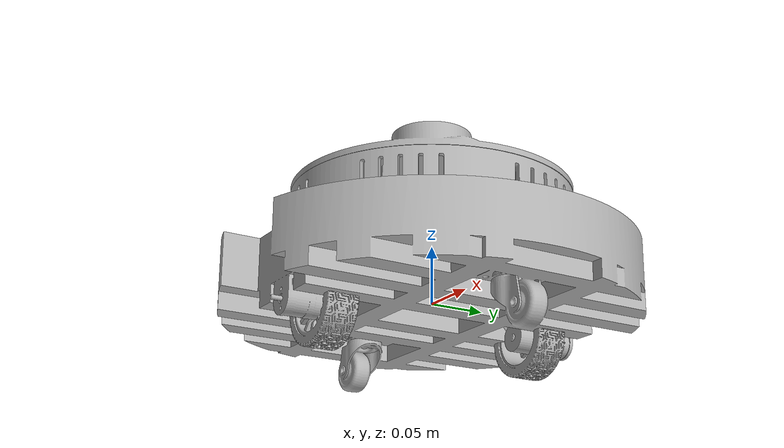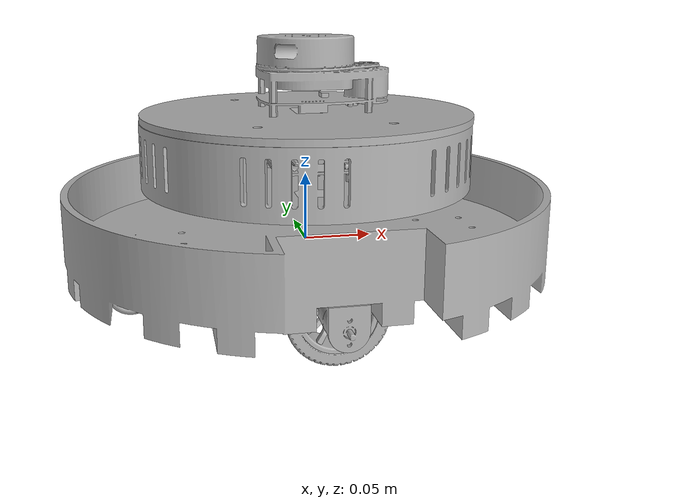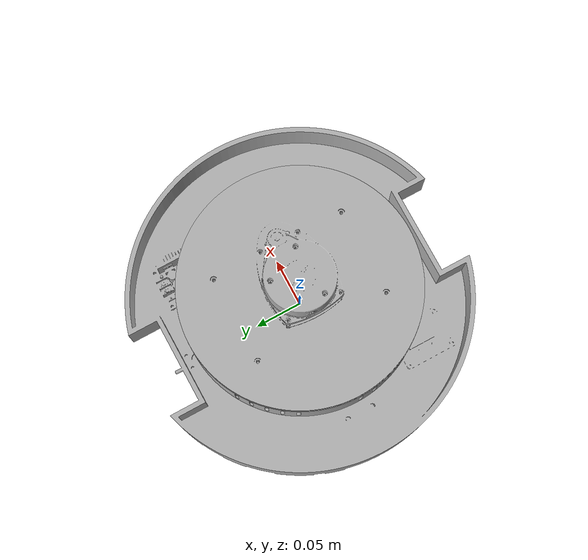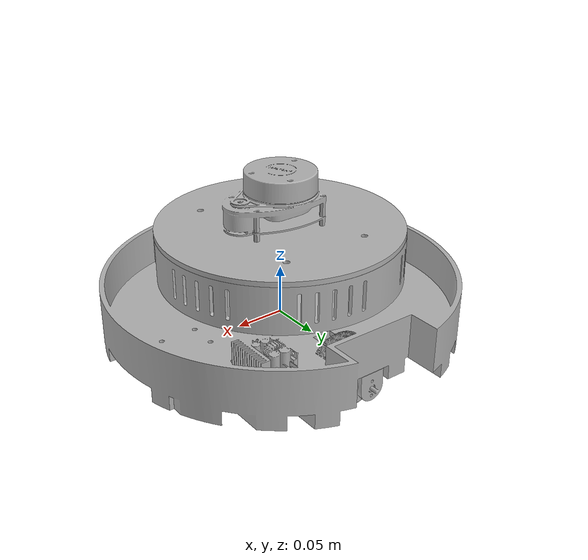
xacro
<?xml version="1.0" ?>
<robot name="robot_assembly" xmlns:xacro="http://www.ros.org/wiki/xacro">

<xacro:include filename="$(find my_bot)/description/urdf/materials.xacro" />
<xacro:include filename="$(find my_bot)/description/urdf/robot_assembly.trans" />
<xacro:include filename="$(find my_bot)/description/urdf/robot_assembly.gazebo" />

<!-- base_footprint: gốc tọa độ chuẩn ROS (trục X = hướng tiến) -->
<link name="base_footprint"/>

<joint name="base_joint" type="fixed">
  <parent link="base_footprint"/>
  <child link="base_link"/>
  <origin xyz="0.0 0.0 0.0" rpy="0 0 1.5708"/>
</joint>

<link name="base_link">
  <inertial>
    <origin xyz="-0.0001801031310621884 0.00025924195261079174 0.003832242271524391" rpy="0 0 0"/>
    <mass value="5.341870907493194"/>
    <inertia ixx="0.025638" iyy="0.018383" izz="0.041044" ixy="-6.3e-05" iyz="-1.6e-05" ixz="3e-06"/>
  </inertial>
  <visual>
    <origin xyz="0 0 0" rpy="0 0 0"/>
    <geometry>
      <mesh filename="package://my_bot/description/meshes/base_link.stl" scale="0.001 0.001 0.001"/>
    </geometry>
    <material name="silver"/>
  </visual>
  <collision>
    <origin xyz="0 0 0" rpy="0 0 0"/>
    <geometry>
      <mesh filename="package://my_bot/description/meshes/base_link.stl" scale="0.001 0.001 0.001"/>
    </geometry>
  </collision>
</link>

<link name="left_wheel_1_1">
  <inertial>
    <origin xyz="-0.009252274703491131 -4.414402370967493e-06 -5.315775120334765e-06" rpy="0 0 0"/>
    <mass value="0.2717966197109235"/>
    <inertia ixx="0.0002" iyy="0.000119" izz="0.000119" ixy="-0.0" iyz="-0.0" ixz="-0.0"/>
  </inertial>
  <visual>
    <origin xyz="0.090987 -0.000611 0.016569" rpy="0 0 0"/>
    <geometry>
      <mesh filename="package://my_bot/description/meshes/left_wheel_1_1.stl" scale="0.001 0.001 0.001"/>
    </geometry>
    <material name="silver"/>
  </visual>
  <collision>
    <origin xyz="0.090987 -0.000611 0.016569" rpy="0 0 0"/>
    <geometry>
      <mesh filename="package://my_bot/description/meshes/left_wheel_1_1.stl" scale="0.001 0.001 0.001"/>
    </geometry>
  </collision>
</link>

<link name="right_wheel_1">
  <inertial>
    <origin xyz="0.009252355095506246 -6.634310137020602e-06 -2.4158363846199515e-07" rpy="0 0 0"/>
    <mass value="0.2717966197108583"/>
    <inertia ixx="0.0002" iyy="0.000119" izz="0.000119" ixy="0.0" iyz="-0.0" ixz="0.0"/>
  </inertial>
  <visual>
    <origin xyz="-0.090987 -0.000611 0.016569" rpy="0 0 0"/>
    <geometry>
      <mesh filename="package://my_bot/description/meshes/right_wheel_1.stl" scale="0.001 0.001 0.001"/>
    </geometry>
    <material name="silver"/>
  </visual>
  <collision>
    <origin xyz="-0.090987 -0.000611 0.016569" rpy="0 0 0"/>
    <geometry>
      <mesh filename="package://my_bot/description/meshes/right_wheel_1.stl" scale="0.001 0.001 0.001"/>
    </geometry>
  </collision>
</link>

<link name="Tang2_24cm_ComponentPi_1_1">
  <inertial>
    <origin xyz="0.0011619472588145366 0.00037962234624636104 0.04981801224075864" rpy="0 0 0"/>
    <mass value="3.7734661537037937"/>
    <inertia ixx="0.016801" iyy="0.01713" izz="0.032625" ixy="3e-06" iyz="1.4e-05" ixz="4e-06"/>
  </inertial>
  <visual>
    <origin xyz="0.0 -0.0 -0.007" rpy="0 0 0"/>
    <geometry>
      <mesh filename="package://my_bot/description/meshes/Tang2_24cm_ComponentPi_1_1.stl" scale="0.001 0.001 0.001"/>
    </geometry>
    <material name="silver"/>
  </visual>
  <collision>
    <origin xyz="0.0 -0.0 -0.007" rpy="0 0 0"/>
    <geometry>
      <mesh filename="package://my_bot/description/meshes/Tang2_24cm_ComponentPi_1_1.stl" scale="0.001 0.001 0.001"/>
    </geometry>
  </collision>
</link>

<link name="Tang3_24cm_ComponentLidar_1_1">
  <inertial>
    <origin xyz="-0.0002176504381086913 -0.0033925161264463212 0.09435239830255189" rpy="0 0 0"/>
    <mass value="2.3189387029545405"/>
    <inertia ixx="0.007248" iyy="0.006946" izz="0.013375" ixy="3e-06" iyz="8.5e-05" ixz="8e-06"/>
  </inertial>
  <visual>
    <origin xyz="0.0 -0.0 -0.007" rpy="0 0 0"/>
    <geometry>
      <mesh filename="package://my_bot/description/meshes/Tang3_24cm_ComponentLidar_1_1.stl" scale="0.001 0.001 0.001"/>
    </geometry>
    <material name="silver"/>
  </visual>
  <collision>
    <origin xyz="0.0 -0.0 -0.007" rpy="0 0 0"/>
    <geometry>
      <mesh filename="package://my_bot/description/meshes/Tang3_24cm_ComponentLidar_1_1.stl" scale="0.001 0.001 0.001"/>
    </geometry>
  </collision>
</link>

<joint name="revolute_9" type="continuous">
  <origin xyz="-0.090987 0.000611 -0.016569" rpy="0 0 0"/>
  <parent link="base_link"/>
  <child link="left_wheel_1_1"/>
  <axis xyz="1.0 0.0 0.0"/>
</joint>

<joint name="revolute_10" type="continuous">
  <origin xyz="0.090987 0.000611 -0.016569" rpy="0 0 0"/>
  <parent link="base_link"/>
  <child link="right_wheel_1"/>
  <axis xyz="1.0 0.0 0.0"/>
</joint>

<joint name="Rigid 11" type="fixed">
  <origin xyz="0.0 0.0 0.007" rpy="0 0 0"/>
  <parent link="base_link"/>
  <child link="Tang2_24cm_ComponentPi_1_1"/>
</joint>

<joint name="Rigid 12" type="fixed">
  <origin xyz="0.0 0.0 0.007" rpy="0 0 0"/>
  <parent link="base_link"/>
  <child link="Tang3_24cm_ComponentLidar_1_1"/>
</joint>

</robot>

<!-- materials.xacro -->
<robot name="robot_assembly" xmlns:xacro="http://www.ros.org/wiki/xacro" >

<material name="silver">
  <color rgba="0.700 0.700 0.700 1.000"/>
</material>

</robot>

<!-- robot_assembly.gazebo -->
<robot name="robot_assembly" xmlns:xacro="http://www.ros.org/wiki/xacro" >

<xacro:property name="body_color" value="Gazebo/Silver" />

<gazebo>
  <plugin filename="gz-sim-diff-drive-system"
          name="gz::sim::systems::DiffDrive">
    <left_joint>revolute_10</left_joint>
    <right_joint>revolute_9</right_joint>
    <wheel_separation>0.182</wheel_separation>
    <wheel_radius>0.0415</wheel_radius>
    <odom_publish_frequency>20</odom_publish_frequency>
    <topic>/cmd_vel</topic>
    <odom_topic>/odom</odom_topic>
    <tf_topic>/tf</tf_topic>
    <frame_id>odom</frame_id>
    <child_frame_id>base_footprint</child_frame_id>
  </plugin>
  <plugin filename="gz-sim-joint-state-publisher-system"
          name="gz::sim::systems::JointStatePublisher">
    <topic>/joint_states</topic>
  </plugin>
</gazebo>

<gazebo reference="base_link">
  <material>${body_color}</material>
  <mu1>0.2</mu1>
  <mu2>0.2</mu2>
  <selfCollide>true</selfCollide>
  <gravity>true</gravity>

  <sensor name="lidar_sensor" type="gpu_lidar">
    <pose>0 0 0.007 0 0 0</pose>
    <gz_frame_id>Tang3_24cm_ComponentLidar_1_1</gz_frame_id>
    <topic>/scan</topic>
    <update_rate>10</update_rate>
    <always_on>true</always_on>
    <visualize>true</visualize>
    <ray>
      <scan>
        <horizontal>
          <samples>360</samples>
          <resolution>1.0</resolution>
          <min_angle>-3.14159</min_angle>
          <max_angle>3.14159</max_angle>
        </horizontal>
      </scan>
      <range>
        <min>0.15</min>
        <max>12.0</max>
        <resolution>0.015</resolution>
      </range>
    </ray>
  </sensor>
</gazebo>

<gazebo reference="left_wheel_1_1">
  <material>${body_color}</material>
  <mu1>0.2</mu1>
  <mu2>0.2</mu2>
  <selfCollide>true</selfCollide>
</gazebo>

<gazebo reference="right_wheel_1">
  <material>${body_color}</material>
  <mu1>0.2</mu1>
  <mu2>0.2</mu2>
  <selfCollide>true</selfCollide>
</gazebo>

<gazebo reference="Tang2_24cm_ComponentPi_1_1">
  <material>${body_color}</material>
  <mu1>0.2</mu1>
  <mu2>0.2</mu2>
  <selfCollide>true</selfCollide>
</gazebo>

<gazebo reference="Tang3_24cm_ComponentLidar_1_1">
  <material>${body_color}</material>
  <mu1>0.2</mu1>
  <mu2>0.2</mu2>
  <selfCollide>true</selfCollide>
</gazebo>

</robot>
